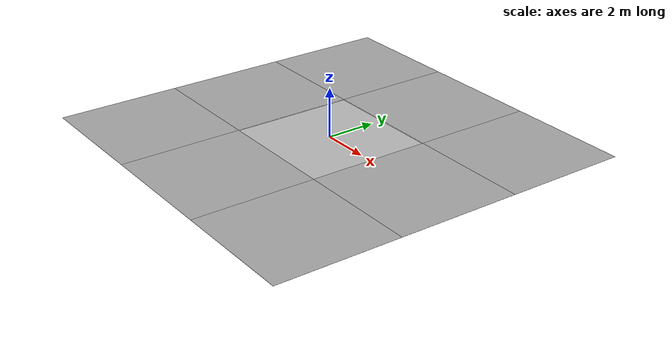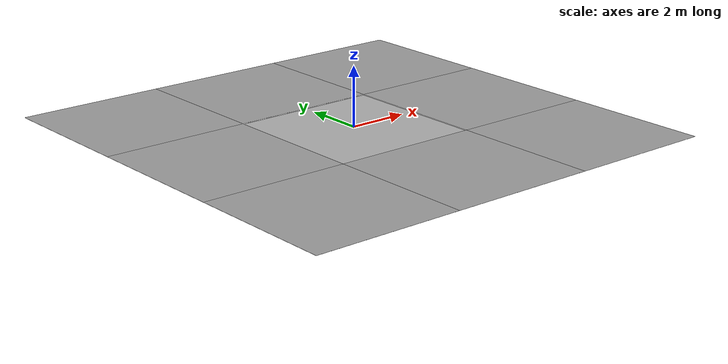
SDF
<?xml version='1.0'?>
<sdf version='1.4'>
    <model name='plane'>
        <static>true</static>
        <link name='link'>

            <collision name='collision'>
                <geometry>
                    <plane>
                        <normal>0 0 1</normal>
                        <size>15 15</size>
                    </plane>
                </geometry>
                <surface>
                    <friction>
                        <ode>
                            <mu>100</mu>
                            <mu2>50</mu2>
                        </ode>
                    </friction>
                </surface>
            </collision>

            <visual name='visual_0'>
                <pose>0 0 0 0 0 0</pose>
                <cast_shadows>false</cast_shadows>
                <geometry>
                    <plane>
                        <normal>0 0 1</normal>
                        <size>5 5</size>
                    </plane>
                </geometry>
                <material>
                    <script>
                        <uri>model://plane/materials/scripts</uri>
                        <uri>model://plane/materials/textures</uri>
                        <name>vrc/pavement</name>
                    </script>
                </material>
            </visual>

            <visual name='visual_1'>
                <pose>0 5 0 0 0 0</pose>
                <cast_shadows>false</cast_shadows>
                <geometry>
                    <plane>
                        <normal>0 0 1</normal>
                        <size>5 5</size>
                    </plane>
                </geometry>
                <material>
                    <script>
                        <uri>model://plane/materials/scripts</uri>
                        <uri>model://plane/materials/textures</uri>
                        <name>vrc/pavement</name>
                    </script>
                </material>
            </visual>

            <visual name='visual_2'>
                <pose>0 -5 0 0 0 0</pose>
                <cast_shadows>false</cast_shadows>
                <geometry>
                    <plane>
                        <normal>0 0 1</normal>
                        <size>5 5</size>
                    </plane>
                </geometry>
                <material>
                    <script>
                        <uri>model://plane/materials/scripts</uri>
                        <uri>model://plane/materials/textures</uri>
                        <name>vrc/pavement</name>
                    </script>
                </material>
            </visual>

            <visual name='visual_3'>
                <pose>-5 -5 0 0 0 0</pose>
                <cast_shadows>false</cast_shadows>
                <geometry>
                    <plane>
                        <normal>0 0 1</normal>
                        <size>5 5</size>
                    </plane>
                </geometry>
                <material>
                    <script>
                        <uri>model://plane/materials/scripts</uri>
                        <uri>model://plane/materials/textures</uri>
                        <name>vrc/pavement</name>
                    </script>
                </material>
            </visual>

            <visual name='visual_4'>
                <pose>-5 0 0 0 0 0</pose>
                <cast_shadows>false</cast_shadows>
                <geometry>
                    <plane>
                        <normal>0 0 1</normal>
                        <size>5 5</size>
                    </plane>
                </geometry>
                <material>
                    <script>
                        <uri>model://plane/materials/scripts</uri>
                        <uri>model://plane/materials/textures</uri>
                        <name>vrc/pavement</name>
                    </script>
                </material>
            </visual>

            <visual name='visual_5'>
                <pose>-5 5 0 0 0 0</pose>
                <cast_shadows>false</cast_shadows>
                <geometry>
                    <plane>
                        <normal>0 0 1</normal>
                        <size>5 5</size>
                    </plane>
                </geometry>
                <material>
                    <script>
                        <uri>model://plane/materials/scripts</uri>
                        <uri>model://plane/materials/textures</uri>
                        <name>vrc/pavement</name>
                    </script>
                </material>
            </visual>

            <visual name='visual_6'>
                <pose>5 -5 0 0 0 0</pose>
                <cast_shadows>false</cast_shadows>
                <geometry>
                    <plane>
                        <normal>0 0 1</normal>
                        <size>5 5</size>
                    </plane>
                </geometry>
                <material>
                    <script>
                        <uri>model://plane/materials/scripts</uri>
                        <uri>model://plane/materials/textures</uri>
                        <name>vrc/pavement</name>
                    </script>
                </material>
            </visual>

            <visual name='visual_7'>
                <pose>5 0 0 0 0 0</pose>
                <cast_shadows>false</cast_shadows>
                <geometry>
                    <plane>
                        <normal>0 0 1</normal>
                        <size>5 5</size>
                    </plane>
                </geometry>
                <material>
                    <script>
                        <uri>model://plane/materials/scripts</uri>
                        <uri>model://plane/materials/textures</uri>
                        <name>vrc/pavement</name>
                    </script>
                </material>
            </visual>

            <visual name='visual_8'>
                <pose>5 5 0 0 0 0</pose>
                <cast_shadows>false</cast_shadows>
                <geometry>
                    <plane>
                        <normal>0 0 1</normal>
                        <size>5 5</size>
                    </plane>
                </geometry>
                <material>
                    <script>
                        <uri>model://plane/materials/scripts</uri>
                        <uri>model://plane/materials/textures</uri>
                        <name>vrc/pavement</name>
                    </script>
                </material>
            </visual>

        </link>
    </model>
</sdf>
